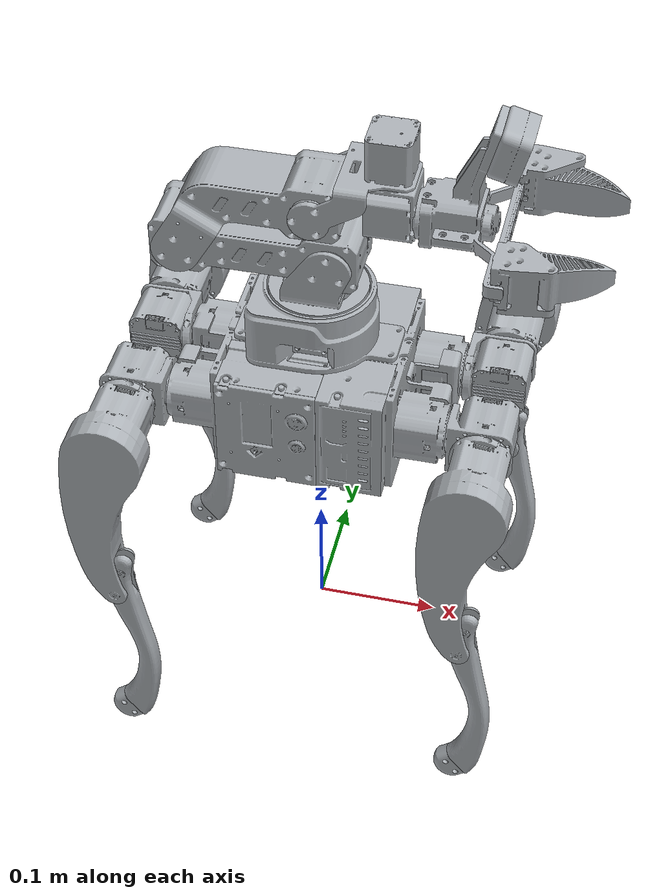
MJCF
<mujoco model="ri_plus_4438_bfm">
  <compiler angle="radian" meshdir="assets" autolimits="true" />
  <option gravity="0 0 -9.81" iterations="50" solver="Newton" timestep="0.005" />
  <asset>
    <material name="visual_body" rgba="0.68 0.70 0.72 1" specular="0.25" shininess="0.35" />
    <material name="collision_debug" rgba="0.95 0.65 0.12 0.25" specular="0" />
    <mesh name="base_link_part_1" file="base_link_part_1.STL" />
    <mesh name="base_link_part_2" file="base_link_part_2.STL" />
    <mesh name="FL_hip" file="FL_hip.STL" />
    <mesh name="FL_thigh" file="FL_thigh.STL" />
    <mesh name="FL_calf" file="FL_calf.STL" />
    <mesh name="FL_foot" file="FL_foot.STL" />
    <mesh name="FR_hip" file="FR_hip.STL" />
    <mesh name="FR_thigh" file="FR_thigh.STL" />
    <mesh name="FR_calf" file="FR_calf.STL" />
    <mesh name="FR_foot" file="FR_foot.STL" />
    <mesh name="RL_hip" file="RL_hip.STL" />
    <mesh name="RL_thigh" file="RL_thigh.STL" />
    <mesh name="RL_calf" file="RL_calf.STL" />
    <mesh name="RL_foot" file="RL_foot.STL" />
    <mesh name="RR_hip" file="RR_hip.STL" />
    <mesh name="RR_thigh" file="RR_thigh.STL" />
    <mesh name="RR_calf" file="RR_calf.STL" />
    <mesh name="RR_foot" file="RR_foot.STL" />
    <mesh name="xlerobot_base_link" file="xlerobot_base_link.STL" />
    <mesh name="shoulder_link" file="shoulder_link.STL" />
    <mesh name="upper_arm_link" file="upper_arm_link.STL" />
    <mesh name="forearm_link" file="forearm_link.STL" />
    <mesh name="wrist1_link" file="wrist1_link.STL" />
    <mesh name="wrist2_link" file="wrist2_link.STL" />
    <mesh name="wrist3_link" file="wrist3_link.STL" />
    <mesh name="gripper_finger_left" file="gripper_finger_left.STL" />
    <mesh name="gripper_finger_right" file="gripper_finger_right.STL" />
  </asset>
  <worldbody>
    <body name="base_link" pos="0 0 0.25">
      <inertial pos="-0.00301327 0.00204115 -0.000635" mass="2.74343032" fullinertia="0.00588039 0.01284666 0.01600904 0.00048912 4.378e-05 -3.516e-05" />
      <freejoint name="float_base" />
      <geom type="mesh" mesh="base_link_part_1" contype="0" conaffinity="0" group="1" density="0" material="visual_body" />
      <geom type="mesh" mesh="base_link_part_2" contype="0" conaffinity="0" group="1" density="0" material="visual_body" />
      <geom name="base_collision" type="box" pos="0 -0.0011 0" size="0.10 0.065 0.045" group="3" material="collision_debug" />
      <site name="imu" pos="0 0 0" size="0.005" />
      <body name="FL_hip" pos="0.14165 0.037 0">
        <inertial pos="-0.00266064 0.00153194 -0.00011724" mass="0.27079698" fullinertia="2.36e-05 3.433e-05 3.58e-05 -8.3e-07 1.5e-07 -3e-08" />
        <joint name="FL_hip_joint" type="hinge" axis="1 0 0" range="-1.50 1.50" damping="0.02" frictionloss="0.06" armature="0.008234" />
        <geom type="mesh" mesh="FL_hip" contype="0" conaffinity="0" group="1" density="0" material="visual_body" />
        <geom name="FL_hip_collision_1" type="mesh" mesh="FL_hip" group="3" material="collision_debug" />
        <body name="FL_thigh" pos="0 0.0834 0">
          <inertial pos="-0.00360471 -0.01763227 -0.02190343" mass="0.48086181" fullinertia="0.00103502 0.00094426 0.00024889 2.935e-05 -8.603e-05 0.00018729" />
          <joint name="FL_thigh_joint" type="hinge" axis="0 1 0" range="-1.57 3.49" damping="0.02" frictionloss="0.06" armature="0.008234" />
          <geom type="mesh" mesh="FL_thigh" contype="0" conaffinity="0" group="1" density="0" material="visual_body" />
          <geom name="FL_thigh_collision_1" type="mesh" mesh="FL_thigh" group="3" material="collision_debug" />
          <body name="FL_calf" pos="0 0 -0.15">
            <inertial pos="0.01005013 3.13e-06 -0.05890115" mass="0.06068055" fullinertia="0.00021231 0.00021592 5.96e-06 0.0 1.46e-05 -2e-08" />
            <joint name="FL_calf_joint" type="hinge" axis="0 1 0" range="-2.53 -0.84" damping="0.02" frictionloss="0.06" armature="0.008234" />
            <geom type="mesh" mesh="FL_calf" contype="0" conaffinity="0" group="1" density="0" material="visual_body" />
            <geom name="FL_calf_collision_1" type="mesh" mesh="FL_calf" group="3" material="collision_debug" />
            <body name="FL_foot" pos="0 0 -0.15">
              <inertial pos="-0.00396275 0.0 -0.00314463" mass="0.0049215" fullinertia="3.6e-07 4.6e-07 3.3e-07 0.0 7e-08 0.0" />
              <geom type="mesh" mesh="FL_foot" contype="0" conaffinity="0" group="1" density="0" material="visual_body" />
              <geom name="FL_foot" type="sphere" size="0.02" group="3" friction="1.0 0.005 0.0001" material="collision_debug" />
            </body>
          </body>
        </body>
      </body>
      <body name="FR_hip" pos="0.14165 -0.037 0">
        <inertial pos="-0.00266064 -0.00153194 0.00011724" mass="0.27079698" fullinertia="2.36e-05 3.433e-05 3.58e-05 8.3e-07 -1.5e-07 -3e-08" />
        <joint name="FR_hip_joint" type="hinge" axis="1 0 0" range="-1.50 1.50" damping="0.02" frictionloss="0.06" armature="0.008234" />
        <geom type="mesh" mesh="FR_hip" contype="0" conaffinity="0" group="1" density="0" material="visual_body" />
        <geom name="FR_hip_collision_1" type="mesh" mesh="FR_hip" group="3" material="collision_debug" />
        <body name="FR_thigh" pos="0 -0.0834 0">
          <inertial pos="-0.00559051 0.01763224 -0.02107369" mass="0.48086142" fullinertia="0.00101933 0.00095262 0.00027294 -4.59e-05 -0.00016158 -0.00017843" />
          <joint name="FR_thigh_joint" type="hinge" axis="0 1 0" range="-1.57 3.49" damping="0.02" frictionloss="0.06" armature="0.008234" />
          <geom type="mesh" mesh="FR_thigh" contype="0" conaffinity="0" group="1" density="0" material="visual_body" />
          <geom name="FR_thigh_collision_1" type="mesh" mesh="FR_thigh" group="3" material="collision_debug" />
          <body name="FR_calf" pos="0 0 -0.15">
            <inertial pos="0.01005014 3.13e-06 -0.05890115" mass="0.06068055" fullinertia="0.00021231 0.00021592 5.96e-06 0.0 1.46e-05 -2e-08" />
            <joint name="FR_calf_joint" type="hinge" axis="0 1 0" range="-2.53 -0.84" damping="0.02" frictionloss="0.06" armature="0.008234" />
            <geom type="mesh" mesh="FR_calf" contype="0" conaffinity="0" group="1" density="0" material="visual_body" />
            <geom name="FR_calf_collision_1" type="mesh" mesh="FR_calf" group="3" material="collision_debug" />
            <body name="FR_foot" pos="0 0 -0.15">
              <inertial pos="-0.00396275 0.0 -0.00314464" mass="0.0049215" fullinertia="3.6e-07 4.6e-07 3.3e-07 0.0 7e-08 0.0" />
              <geom type="mesh" mesh="FR_foot" contype="0" conaffinity="0" group="1" density="0" material="visual_body" />
              <geom name="FR_foot" type="sphere" size="0.02" group="3" friction="1.0 0.005 0.0001" material="collision_debug" />
            </body>
          </body>
        </body>
      </body>
      <body name="RL_hip" pos="-0.14165 0.037 0">
        <inertial pos="0.00266064 0.00153194 0.00011724" mass="0.27079698" fullinertia="2.36e-05 3.433e-05 3.58e-05 8.3e-07 1.5e-07 3e-08" />
        <joint name="RL_hip_joint" type="hinge" axis="1 0 0" range="-1.50 1.50" damping="0.02" frictionloss="0.06" armature="0.008234" />
        <geom type="mesh" mesh="RL_hip" contype="0" conaffinity="0" group="1" density="0" material="visual_body" />
        <geom name="RL_hip_collision_1" type="mesh" mesh="RL_hip" group="3" material="collision_debug" />
        <body name="RL_thigh" pos="0 0.0834 0">
          <inertial pos="-0.00555466 -0.01763227 -0.02101551" mass="0.48086181" fullinertia="0.00102307 0.00095399 0.00027057 4.602e-05 -0.00015399 0.00018026" />
          <joint name="RL_thigh_joint" type="hinge" axis="0 1 0" range="-1.57 3.49" damping="0.02" frictionloss="0.06" armature="0.008234" />
          <geom type="mesh" mesh="RL_thigh" contype="0" conaffinity="0" group="1" density="0" material="visual_body" />
          <geom name="RL_thigh_collision_1" type="mesh" mesh="RL_thigh" group="3" material="collision_debug" />
          <body name="RL_calf" pos="0 0 -0.15">
            <inertial pos="0.01005013 3.13e-06 -0.05890115" mass="0.06068055" fullinertia="0.00021231 0.00021592 5.96e-06 0.0 1.46e-05 -2e-08" />
            <joint name="RL_calf_joint" type="hinge" axis="0 1 0" range="-2.53 -0.84" damping="0.02" frictionloss="0.06" armature="0.008234" />
            <geom type="mesh" mesh="RL_calf" contype="0" conaffinity="0" group="1" density="0" material="visual_body" />
            <geom name="RL_calf_collision_1" type="mesh" mesh="RL_calf" group="3" material="collision_debug" />
            <body name="RL_foot" pos="0 0 -0.15">
              <inertial pos="-0.00396275 0.0 -0.00314463" mass="0.0049215" fullinertia="3.6e-07 4.6e-07 3.3e-07 0.0 7e-08 0.0" />
              <geom type="mesh" mesh="RL_foot" contype="0" conaffinity="0" group="1" density="0" material="visual_body" />
              <geom name="RL_foot" type="sphere" size="0.02" group="3" friction="1.0 0.005 0.0001" material="collision_debug" />
            </body>
          </body>
        </body>
      </body>
      <body name="RR_hip" pos="-0.14165 -0.037 0">
        <inertial pos="0.00266064 -0.00153194 -0.00011724" mass="0.27079698" fullinertia="2.36e-05 3.433e-05 3.58e-05 -8.3e-07 -1.5e-07 3e-08" />
        <joint name="RR_hip_joint" type="hinge" axis="1 0 0" range="-1.50 1.50" damping="0.02" frictionloss="0.06" armature="0.008234" />
        <geom type="mesh" mesh="RR_hip" contype="0" conaffinity="0" group="1" density="0" material="visual_body" />
        <geom name="RR_hip_collision_1" type="mesh" mesh="RR_hip" group="3" material="collision_debug" />
        <body name="RR_thigh" pos="0 -0.0834 0">
          <inertial pos="-0.00521957 0.01761785 -0.02116423" mass="0.48086142" fullinertia="0.00102378 0.00095271 0.00026924 -4.288e-05 -0.00015179 -0.00018005" />
          <joint name="RR_thigh_joint" type="hinge" axis="0 1 0" range="-1.57 3.49" damping="0.02" frictionloss="0.06" armature="0.008234" />
          <geom type="mesh" mesh="RR_thigh" contype="0" conaffinity="0" group="1" density="0" material="visual_body" />
          <geom name="RR_thigh_collision_1" type="mesh" mesh="RR_thigh" group="3" material="collision_debug" />
          <body name="RR_calf" pos="0 0 -0.15">
            <inertial pos="0.01005013 3.13e-06 -0.05890115" mass="0.06068055" fullinertia="0.00021231 0.00021592 5.96e-06 0.0 1.46e-05 -2e-08" />
            <joint name="RR_calf_joint" type="hinge" axis="0 1 0" range="-2.53 -0.84" damping="0.02" frictionloss="0.06" armature="0.008234" />
            <geom type="mesh" mesh="RR_calf" contype="0" conaffinity="0" group="1" density="0" material="visual_body" />
            <geom name="RR_calf_collision_1" type="mesh" mesh="RR_calf" group="3" material="collision_debug" />
            <body name="RR_foot" pos="0 0 -0.15">
              <inertial pos="-0.00396275 0.0 -0.00314463" mass="0.0049215" fullinertia="3.6e-07 4.6e-07 3.3e-07 0.0 7e-08 0.0" />
              <geom type="mesh" mesh="RR_foot" contype="0" conaffinity="0" group="1" density="0" material="visual_body" />
              <geom name="RR_foot" type="sphere" size="0.02" group="3" friction="1.0 0.005 0.0001" material="collision_debug" />
            </body>
          </body>
        </body>
      </body>
      <body name="xlerobot_base_link" pos="0 0 0.051">
        <inertial pos="-0.00423549 0.00051824 0.01705748" mass="0.47103475" fullinertia="0.00025362 0.00033656 0.00041884 -5.6e-07 -1.01e-06 7.1e-06" />
        <geom type="mesh" mesh="xlerobot_base_link" contype="0" conaffinity="0" group="1" density="0" material="visual_body" />
        <geom name="xlerobot_base_link_collision_1" type="mesh" mesh="xlerobot_base_link" group="3" material="collision_debug" />
        <body name="shoulder_link" pos="0 0 0.0449">
          <inertial pos="0.00260064 0.00106396 0.01762566" mass="0.12453754" fullinertia="0.00011533 6.767e-05 0.00010801 -1.12e-06 -1.125e-05 -2.79e-06" />
          <joint name="shoulder_link_joint" type="hinge" axis="0 0 1" range="-2.618 2.618" damping="0.02" frictionloss="0.06" armature="0.008234" />
          <geom type="mesh" mesh="shoulder_link" contype="0" conaffinity="0" group="1" density="0" material="visual_body" />
          <geom name="shoulder_link_collision_1" type="mesh" mesh="shoulder_link" group="3" material="collision_debug" />
          <body name="upper_arm_link" pos="0.013467 -5E-05 0.04">
            <inertial pos="-0.05854192 -0.00458285 5.18e-06" mass="0.61260563" fullinertia="0.00012124 0.00195806 0.00201384 -3.5e-07 -7.1e-07 -3.8e-07" />
            <joint name="upper_arm_link_joint" type="hinge" axis="0 1 0" range="0 3.526" damping="0.02" frictionloss="0.06" armature="0.008234" />
            <geom type="mesh" mesh="upper_arm_link" contype="0" conaffinity="0" group="1" density="0" material="visual_body" />
            <geom name="upper_arm_link_collision_1" type="mesh" mesh="upper_arm_link" group="3" material="collision_debug" />
            <body name="forearm_link" pos="-0.117 0 0">
              <inertial pos="0.08098665 -0.00323754 0.04031467" mass="0.38751294" fullinertia="0.00019273 0.00064687 0.00066492 4.328e-05 -0.00013948 1.226e-05" />
              <joint name="forearm_link_joint" type="hinge" axis="0 -1 0" range="-4.224 0" damping="0.02" frictionloss="0.06" armature="0.008234" />
              <geom type="mesh" mesh="forearm_link" contype="0" conaffinity="0" group="1" density="0" material="visual_body" />
              <geom name="forearm_link_collision_1" type="mesh" mesh="forearm_link" group="3" material="collision_debug" />
              <body name="wrist1_link" pos="0.1035 0 0.045">
                <inertial pos="0.04463011 0.00061676 0.03660595" mass="0.19355351" fullinertia="0.00012865 0.00016982 0.00015558 6.14e-06 -6.151e-05 5.19e-06" />
                <joint name="wrist1_link_joint" type="hinge" axis="0 1 0" range="-1.658 1.99" damping="0.02" frictionloss="0.06" armature="0.008234" />
                <geom type="mesh" mesh="wrist1_link" contype="0" conaffinity="0" group="1" density="0" material="visual_body" />
                <geom name="wrist1_link_collision_1" type="mesh" mesh="wrist1_link" group="3" material="collision_debug" />
                <body name="wrist2_link" pos="0.055 0 0.030878">
                  <inertial pos="0.0032252 -8.812e-05 -0.02889903" mass="0.16857264" fullinertia="5.71e-05 5.749e-05 4.435e-05 -5e-08 2.56e-06 -2.1e-07" />
                  <joint name="wrist2_link_joint" type="hinge" axis="0 0 1" range="-1.396 1.396" damping="0.02" frictionloss="0.06" armature="0.001976" />
                  <geom type="mesh" mesh="wrist2_link" contype="0" conaffinity="0" group="1" density="0" material="visual_body" />
                  <geom name="wrist2_link_collision_1" type="mesh" mesh="wrist2_link" group="3" material="collision_debug" />
                  <body name="wrist3_link" pos="0.0186 0 -0.033">
                    <inertial pos="0.04099855 -8.9e-05 0.01150782" mass="0.31383978" fullinertia="0.00030892 0.00032809 0.0002097 -2.9e-07 -8.101e-05 2.89e-06" />
                    <joint name="wrist3_link_joint" type="hinge" axis="1 0 0" range="-2.793 2.793" damping="0.02" frictionloss="0.06" armature="0.001976" />
                    <geom type="mesh" mesh="wrist3_link" contype="0" conaffinity="0" group="1" density="0" material="visual_body" />
                    <geom name="wrist3_link_collision_1" type="mesh" mesh="wrist3_link" group="3" material="collision_debug" />
                    <body name="gripper_finger_left" pos="0.06925 0 0">
                      <inertial pos="0.01860227 0.05889209 -0.00134131" mass="0.06406078" fullinertia="1.275e-05 2.778e-05 2.573e-05 3.03e-06 -1.64e-06 1.4e-07" />
                      <joint name="gripper_finger_left_joint" type="slide" axis="0 1 0" range="-0.042 0" damping="0.02" frictionloss="0.01" />
                      <geom type="mesh" mesh="gripper_finger_left" contype="0" conaffinity="0" group="1" density="0" material="visual_body" />
                      <geom name="gripper_finger_left_collision_1" type="mesh" mesh="gripper_finger_left" group="3" material="collision_debug" />
                    </body>
                    <body name="gripper_finger_right" pos="0.06925 0 0">
                      <inertial pos="0.01860227 -0.05889209 0.00134131" mass="0.06406078" fullinertia="1.275e-05 2.778e-05 2.573e-05 -3.03e-06 1.64e-06 1.4e-07" />
                      <joint name="gripper_finger_right_joint" type="slide" axis="0 1 0" range="0 0.042" damping="0.02" frictionloss="0.01" />
                      <geom type="mesh" mesh="gripper_finger_right" contype="0" conaffinity="0" group="1" density="0" material="visual_body" />
                      <geom name="gripper_finger_right_collision_1" type="mesh" mesh="gripper_finger_right" group="3" material="collision_debug" />
                    </body>
                  </body>
                </body>
              </body>
            </body>
          </body>
        </body>
      </body>
    </body>
  </worldbody>
  <default>
    <geom friction="0.4 0.005 0.0001" margin="0.001" condim="3" />
  </default>
  <actuator>
    <motor name="FL_hip_joint" joint="FL_hip_joint" gear="1" ctrllimited="true" ctrlrange="-10 10" />
    <motor name="FL_thigh_joint" joint="FL_thigh_joint" gear="1" ctrllimited="true" ctrlrange="-10 10" />
    <motor name="FL_calf_joint" joint="FL_calf_joint" gear="1" ctrllimited="true" ctrlrange="-10 10" />
    <motor name="FR_hip_joint" joint="FR_hip_joint" gear="1" ctrllimited="true" ctrlrange="-10 10" />
    <motor name="FR_thigh_joint" joint="FR_thigh_joint" gear="1" ctrllimited="true" ctrlrange="-10 10" />
    <motor name="FR_calf_joint" joint="FR_calf_joint" gear="1" ctrllimited="true" ctrlrange="-10 10" />
    <motor name="RL_hip_joint" joint="RL_hip_joint" gear="1" ctrllimited="true" ctrlrange="-10 10" />
    <motor name="RL_thigh_joint" joint="RL_thigh_joint" gear="1" ctrllimited="true" ctrlrange="-10 10" />
    <motor name="RL_calf_joint" joint="RL_calf_joint" gear="1" ctrllimited="true" ctrlrange="-10 10" />
    <motor name="RR_hip_joint" joint="RR_hip_joint" gear="1" ctrllimited="true" ctrlrange="-10 10" />
    <motor name="RR_thigh_joint" joint="RR_thigh_joint" gear="1" ctrllimited="true" ctrlrange="-10 10" />
    <motor name="RR_calf_joint" joint="RR_calf_joint" gear="1" ctrllimited="true" ctrlrange="-10 10" />
    <motor name="shoulder_link_joint" joint="shoulder_link_joint" gear="1" ctrllimited="true" ctrlrange="-10 10" />
    <motor name="upper_arm_link_joint" joint="upper_arm_link_joint" gear="1" ctrllimited="true" ctrlrange="-10 10" />
    <motor name="forearm_link_joint" joint="forearm_link_joint" gear="1" ctrllimited="true" ctrlrange="-10 10" />
    <motor name="wrist1_link_joint" joint="wrist1_link_joint" gear="1" ctrllimited="true" ctrlrange="-10 10" />
    <motor name="wrist2_link_joint" joint="wrist2_link_joint" gear="1" ctrllimited="true" ctrlrange="-3.7 3.7" />
    <motor name="wrist3_link_joint" joint="wrist3_link_joint" gear="1" ctrllimited="true" ctrlrange="-3.7 3.7" />
    <motor name="gripper_finger_left_joint" joint="gripper_finger_left_joint" gear="1" ctrllimited="true" ctrlrange="-10 10" />
    <motor name="gripper_finger_right_joint" joint="gripper_finger_right_joint" gear="1" ctrllimited="true" ctrlrange="-10 10" />
  </actuator>
  <equality>
    <joint name="gripper_finger_right_joint_mimic" joint1="gripper_finger_right_joint" joint2="gripper_finger_left_joint" polycoef="0 -1 0 0 0" />
  </equality>
  <keyframe>
    <key name="home" qpos="0 0 0.25 1 0 0 0 0.0 0.9 -1.8 0.0 0.9 -1.8 0.0 0.9 -1.8 0.0 0.9 -1.8 0.0 1.0 -2.0 0.0 0.0 0.0 0.0 0.0" ctrl="0 0 0 0 0 0 0 0 0 0 0 0 0 0 0 0 0 0 0 0" />
  </keyframe>
</mujoco>
